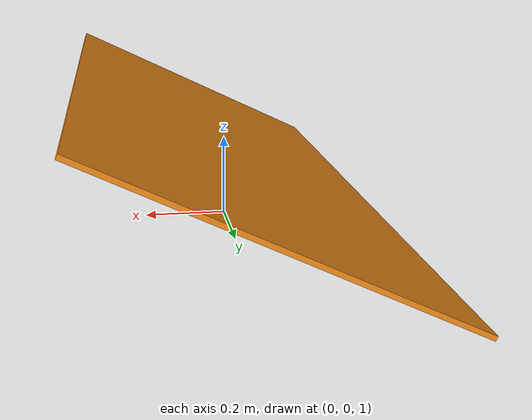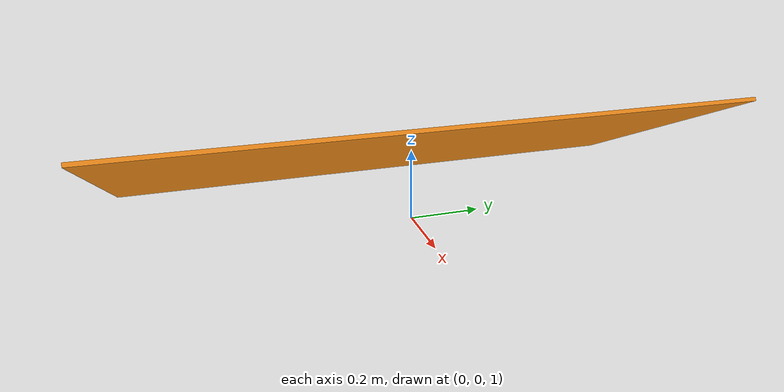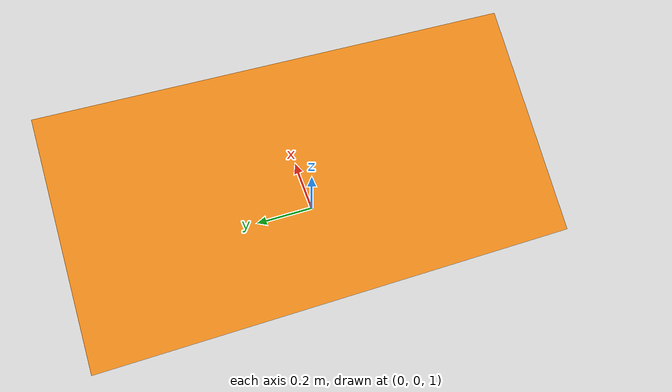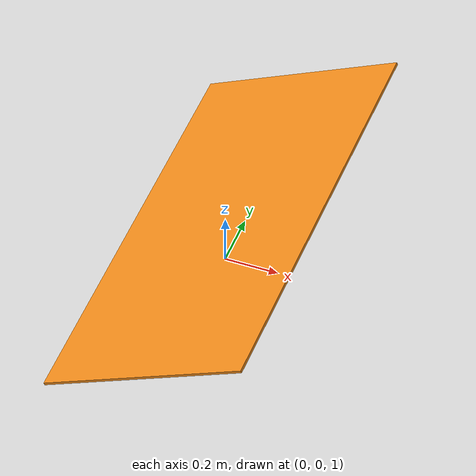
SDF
<sdf version="1.7">
  <model name="landing_platform">
    <static>true</static>
    <link name="base_link">
      <collision name="collision">
        <geometry>
          <box>
            <size>0.8 1.6 0.01</size>
          </box>
        </geometry>
        <friction>
          <ode>
            <mu>1500.0</mu>
            <mu2>1500.0</mu2>
          </ode>
        </friction>
        <pose>0 0 1.2 0 -0.44879895051 0</pose>
      </collision>
      <visual name="visual">
        <geometry>
          <box>
            <size>0.8 1.6 0.01</size>
          </box>
        </geometry>
        <pose>0 0 1.2 0 -0.44879895051 0</pose>
        <material>
          <script>
            <uri>file://media/materials/scripts/gazebo.material</uri>
            <name>Gazebo/Orange</name>
          </script>
        </material>
      </visual>
    </link>
  </model>
</sdf>
